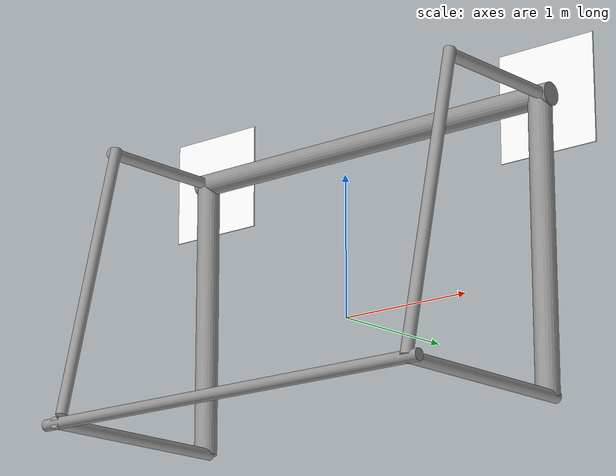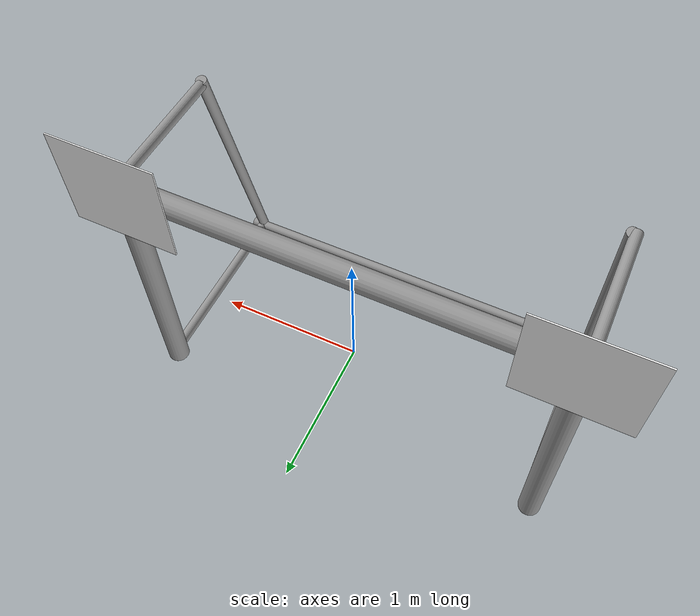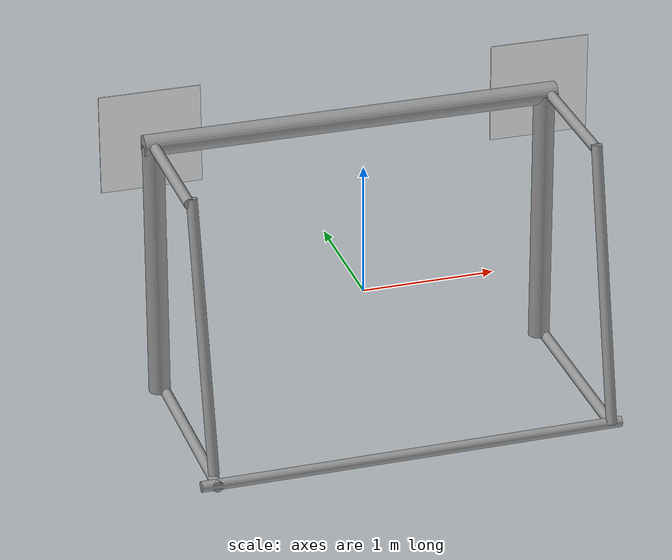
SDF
<?xml version='1.0'?>
<sdf version='1.6'>
  <model name='football_goal_with_mark'>
    <link name='link_0'>
      <pose frame=''>-1.50236 0.235986 -1.71082 -0 -0 -0</pose>
      <inertial>
        <mass>1</mass>
        <inertia>
          <ixx>0.145833</ixx>
          <ixy>0</ixy>
          <ixz>0</ixz>
          <iyy>0.145833</iyy>
          <iyz>0</iyz>
          <izz>0.125</izz>
        </inertia>
        <pose frame=''>0 0 0 0 -0 0</pose>
      </inertial>
      <self_collide>0</self_collide>
      <kinematic>0</kinematic>
      <visual name='visual'>
        <pose frame=''>0 0 2 0 -0 0</pose>
        <geometry>
          <cylinder>
            <radius>0.08</radius>
            <length>2</length>
          </cylinder>
        </geometry>
        <material>
          <lighting>1</lighting>
          <script>
            <uri>file://media/materials/scripts/gazebo.material</uri>
            <name>Gazebo/Grey</name>
          </script>
          <ambient>1 1 1 1</ambient>
          <diffuse>1 1 1 1</diffuse>
          <specular>0.01 0.01 0.01 1</specular>
          <emissive>0 0 0 1</emissive>
          <shader type='vertex'>
            <normal_map>__default__</normal_map>
          </shader>
        </material>
        <cast_shadows>1</cast_shadows>
        <transparency>0</transparency>
      </visual>
      <collision name='collision'>
        <laser_retro>0</laser_retro>
        <max_contacts>10</max_contacts>
        <pose frame=''>0 0 2 0 -0 0</pose>
        <geometry>
          <cylinder>
            <radius>0.08</radius>
            <length>2</length>
          </cylinder>
        </geometry>
        <surface>
          <friction>
            <ode>
              <mu>1</mu>
              <mu2>1</mu2>
              <fdir1>0 0 0</fdir1>
              <slip1>0</slip1>
              <slip2>0</slip2>
            </ode>
            <torsional>
              <coefficient>1</coefficient>
              <patch_radius>0</patch_radius>
              <surface_radius>0</surface_radius>
              <use_patch_radius>1</use_patch_radius>
              <ode>
                <slip>0</slip>
              </ode>
            </torsional>
          </friction>
          <bounce>
            <restitution_coefficient>0</restitution_coefficient>
            <threshold>1e+06</threshold>
          </bounce>
          <contact>
            <collide_without_contact>0</collide_without_contact>
            <collide_without_contact_bitmask>1</collide_without_contact_bitmask>
            <collide_bitmask>1</collide_bitmask>
            <ode>
              <soft_cfm>0</soft_cfm>
              <soft_erp>0.2</soft_erp>
              <kp>1e+13</kp>
              <kd>1</kd>
              <max_vel>0.01</max_vel>
              <min_depth>0</min_depth>
            </ode>
            <bullet>
              <split_impulse>1</split_impulse>
              <split_impulse_penetration_threshold>-0.01</split_impulse_penetration_threshold>
              <soft_cfm>0</soft_cfm>
              <soft_erp>0.2</soft_erp>
              <kp>1e+13</kp>
              <kd>1</kd>
            </bullet>
          </contact>
        </surface>
      </collision>
    </link>
    <link name='link_0_0'>
      <pose frame=''>1.45 0.322528 1.3 -0 -0 -0</pose>
      <inertial>
        <mass>1</mass>
        <inertia>
          <ixx>0.166667</ixx>
          <ixy>0</ixy>
          <ixz>0</ixz>
          <iyy>0.166667</iyy>
          <iyz>0</iyz>
          <izz>0.166667</izz>
        </inertia>
        <pose frame=''>0 0 0 0 -0 0</pose>
      </inertial>
      <self_collide>0</self_collide>
      <kinematic>0</kinematic>
      <gravity>1</gravity>
      <visual name='visual'>
        <pose frame=''>0 0 0 0 -0 0</pose>
        <geometry>
          <box>
            <size>0.75 0.01 0.75</size>
          </box>
        </geometry>
        <material>
          <lighting>1</lighting>
          <script>
            <uri>/home/cm/Workspaces/stereo_loc/src/stereo_loc/texture/marker.material</uri>
            <name>MarkerTexure</name>
          </script>
          <ambient>1 1 1 1</ambient>
          <diffuse>1 1 1 1</diffuse>
          <specular>0 0 0 1</specular>
          <emissive>0 0 0 1</emissive>
          <shader type='vertex'>
            <normal_map>__default__</normal_map>
          </shader>
        </material>
        <cast_shadows>1</cast_shadows>
        <transparency>0</transparency>
      </visual>
      <collision name='collision'>
        <laser_retro>0</laser_retro>
        <max_contacts>10</max_contacts>
        <pose frame=''>0 0 0 0 -0 0</pose>
        <geometry>
          <box>
            <size>0.75 0.01 0.75</size>
          </box>
        </geometry>
        <surface>
          <friction>
            <ode>
              <mu>1</mu>
              <mu2>1</mu2>
              <fdir1>0 0 0</fdir1>
              <slip1>0</slip1>
              <slip2>0</slip2>
            </ode>
            <torsional>
              <coefficient>1</coefficient>
              <patch_radius>0</patch_radius>
              <surface_radius>0</surface_radius>
              <use_patch_radius>1</use_patch_radius>
              <ode>
                <slip>0</slip>
              </ode>
            </torsional>
          </friction>
          <bounce>
            <restitution_coefficient>0</restitution_coefficient>
            <threshold>1e+06</threshold>
          </bounce>
          <contact>
            <collide_without_contact>0</collide_without_contact>
            <collide_without_contact_bitmask>1</collide_without_contact_bitmask>
            <collide_bitmask>1</collide_bitmask>
            <ode>
              <soft_cfm>0</soft_cfm>
              <soft_erp>0.2</soft_erp>
              <kp>1e+13</kp>
              <kd>1</kd>
              <max_vel>0.01</max_vel>
              <min_depth>0</min_depth>
            </ode>
            <bullet>
              <split_impulse>1</split_impulse>
              <split_impulse_penetration_threshold>-0.01</split_impulse_penetration_threshold>
              <soft_cfm>0</soft_cfm>
              <soft_erp>0.2</soft_erp>
              <kp>1e+13</kp>
              <kd>1</kd>
            </bullet>
          </contact>
        </surface>
      </collision>
    </link>
    <link name='link_0_0_clone'>
      <pose frame=''>-1.5 0.314705 1.3 -0 -0 -0</pose>
      <inertial>
        <mass>1</mass>
        <inertia>
          <ixx>0.166667</ixx>
          <ixy>0</ixy>
          <ixz>0</ixz>
          <iyy>0.166667</iyy>
          <iyz>0</iyz>
          <izz>0.166667</izz>
        </inertia>
        <pose frame=''>0 0 0 0 -0 0</pose>
      </inertial>
      <self_collide>0</self_collide>
      <kinematic>0</kinematic>
      <gravity>1</gravity>
      <visual name='visual_0'>
        <pose frame=''>0 0 0 0 -0 0</pose>
        <geometry>
          <box>
            <size>0.75 0.01 0.75</size>
          </box>
        </geometry>
        <material>
          <lighting>1</lighting>
          <script>
            <uri>/home/cm/Workspaces/stereo_loc/src/stereo_loc/texture/marker.material</uri>
            <name>MarkerTexure</name>
          </script>
          <ambient>1 1 1 1</ambient>
          <diffuse>1 1 1 1</diffuse>
          <specular>0 0 0 1</specular>
          <emissive>0 0 0 1</emissive>
          <shader type='vertex'>
            <normal_map>__default__</normal_map>
          </shader>
        </material>
        <cast_shadows>1</cast_shadows>
        <transparency>0</transparency>
      </visual>
      <collision name='collision'>
        <laser_retro>0</laser_retro>
        <max_contacts>10</max_contacts>
        <pose frame=''>0 0 0 0 -0 0</pose>
        <geometry>
          <box>
            <size>0.75 0.01 0.75</size>
          </box>
        </geometry>
        <surface>
          <friction>
            <ode>
              <mu>1</mu>
              <mu2>1</mu2>
              <fdir1>0 0 0</fdir1>
              <slip1>0</slip1>
              <slip2>0</slip2>
            </ode>
            <torsional>
              <coefficient>1</coefficient>
              <patch_radius>0</patch_radius>
              <surface_radius>0</surface_radius>
              <use_patch_radius>1</use_patch_radius>
              <ode>
                <slip>0</slip>
              </ode>
            </torsional>
          </friction>
          <bounce>
            <restitution_coefficient>0</restitution_coefficient>
            <threshold>1e+06</threshold>
          </bounce>
          <contact>
            <collide_without_contact>0</collide_without_contact>
            <collide_without_contact_bitmask>1</collide_without_contact_bitmask>
            <collide_bitmask>1</collide_bitmask>
            <ode>
              <soft_cfm>0</soft_cfm>
              <soft_erp>0.2</soft_erp>
              <kp>1e+13</kp>
              <kd>1</kd>
              <max_vel>0.01</max_vel>
              <min_depth>0</min_depth>
            </ode>
            <bullet>
              <split_impulse>1</split_impulse>
              <split_impulse_penetration_threshold>-0.01</split_impulse_penetration_threshold>
              <soft_cfm>0</soft_cfm>
              <soft_erp>0.2</soft_erp>
              <kp>1e+13</kp>
              <kd>1</kd>
            </bullet>
          </contact>
        </surface>
      </collision>
    </link>
    <link name='link_0_clone'>
      <pose frame=''>1.46069 0.228693 -1.71082 -0 -0 -0</pose>
      <inertial>
        <mass>1</mass>
        <inertia>
          <ixx>0.145833</ixx>
          <ixy>0</ixy>
          <ixz>0</ixz>
          <iyy>0.145833</iyy>
          <iyz>0</iyz>
          <izz>0.125</izz>
        </inertia>
        <pose frame=''>0 0 0 0 -0 0</pose>
      </inertial>
      <self_collide>0</self_collide>
      <kinematic>0</kinematic>
      <visual name='visual'>
        <pose frame=''>0 0 2 0 -0 0</pose>
        <geometry>
          <cylinder>
            <radius>0.08</radius>
            <length>2</length>
          </cylinder>
        </geometry>
        <material>
          <lighting>1</lighting>
          <script>
            <uri>file://media/materials/scripts/gazebo.material</uri>
            <name>Gazebo/Grey</name>
          </script>
          <ambient>1 1 1 1</ambient>
          <diffuse>1 1 1 1</diffuse>
          <specular>0.01 0.01 0.01 1</specular>
          <emissive>0 0 0 1</emissive>
          <shader type='vertex'>
            <normal_map>__default__</normal_map>
          </shader>
        </material>
        <cast_shadows>1</cast_shadows>
        <transparency>0</transparency>
      </visual>
      <collision name='collision'>
        <laser_retro>0</laser_retro>
        <max_contacts>10</max_contacts>
        <pose frame=''>0 0 2 0 -0 0</pose>
        <geometry>
          <cylinder>
            <radius>0.08</radius>
            <length>2</length>
          </cylinder>
        </geometry>
        <surface>
          <friction>
            <ode>
              <mu>1</mu>
              <mu2>1</mu2>
              <fdir1>0 0 0</fdir1>
              <slip1>0</slip1>
              <slip2>0</slip2>
            </ode>
            <torsional>
              <coefficient>1</coefficient>
              <patch_radius>0</patch_radius>
              <surface_radius>0</surface_radius>
              <use_patch_radius>1</use_patch_radius>
              <ode>
                <slip>0</slip>
              </ode>
            </torsional>
          </friction>
          <bounce>
            <restitution_coefficient>0</restitution_coefficient>
            <threshold>1e+06</threshold>
          </bounce>
          <contact>
            <collide_without_contact>0</collide_without_contact>
            <collide_without_contact_bitmask>1</collide_without_contact_bitmask>
            <collide_bitmask>1</collide_bitmask>
            <ode>
              <soft_cfm>0</soft_cfm>
              <soft_erp>0.2</soft_erp>
              <kp>1e+13</kp>
              <kd>1</kd>
              <max_vel>0.01</max_vel>
              <min_depth>0</min_depth>
            </ode>
            <bullet>
              <split_impulse>1</split_impulse>
              <split_impulse_penetration_threshold>-0.01</split_impulse_penetration_threshold>
              <soft_cfm>0</soft_cfm>
              <soft_erp>0.2</soft_erp>
              <kp>1e+13</kp>
              <kd>1</kd>
            </bullet>
          </contact>
        </surface>
      </collision>
    </link>
    <link name='link_0_clone_clone'>
      <pose frame=''>1.49764 -1.45216 -1.64111 -0.225171 -0 -0</pose>
      <inertial>
        <mass>0.94758</mass>
        <inertia>
          <ixx>0.130127</ixx>
          <ixy>0</ixy>
          <ixz>0</ixz>
          <iyy>0.130127</iyy>
          <iyz>0</iyz>
          <izz>0.118448</izz>
        </inertia>
        <pose frame=''>0 0 0 0 -0 0</pose>
      </inertial>
      <self_collide>0</self_collide>
      <kinematic>0</kinematic>
      <visual name='visual'>
        <pose frame=''>0 0 2 0 -0 0</pose>
        <geometry>
          <cylinder>
            <radius>0.04</radius>
            <length>2.08468</length>
          </cylinder>
        </geometry>
        <material>
          <lighting>1</lighting>
          <script>
            <uri>file://media/materials/scripts/gazebo.material</uri>
            <name>Gazebo/Grey</name>
          </script>
          <ambient>1 1 1 1</ambient>
          <diffuse>1 1 1 1</diffuse>
          <specular>0.01 0.01 0.01 1</specular>
          <emissive>0 0 0 1</emissive>
          <shader type='vertex'>
            <normal_map>__default__</normal_map>
          </shader>
        </material>
        <cast_shadows>1</cast_shadows>
        <transparency>0</transparency>
      </visual>
      <collision name='collision'>
        <laser_retro>0</laser_retro>
        <max_contacts>10</max_contacts>
        <pose frame=''>0 0 2 0 -0 0</pose>
        <geometry>
          <cylinder>
            <radius>0.04</radius>
            <length>2.08468</length>
          </cylinder>
        </geometry>
        <surface>
          <friction>
            <ode>
              <mu>1</mu>
              <mu2>1</mu2>
              <fdir1>0 0 0</fdir1>
              <slip1>0</slip1>
              <slip2>0</slip2>
            </ode>
            <torsional>
              <coefficient>1</coefficient>
              <patch_radius>0</patch_radius>
              <surface_radius>0</surface_radius>
              <use_patch_radius>1</use_patch_radius>
              <ode>
                <slip>0</slip>
              </ode>
            </torsional>
          </friction>
          <bounce>
            <restitution_coefficient>0</restitution_coefficient>
            <threshold>1e+06</threshold>
          </bounce>
          <contact>
            <collide_without_contact>0</collide_without_contact>
            <collide_without_contact_bitmask>1</collide_without_contact_bitmask>
            <collide_bitmask>1</collide_bitmask>
            <ode>
              <soft_cfm>0</soft_cfm>
              <soft_erp>0.2</soft_erp>
              <kp>1e+13</kp>
              <kd>1</kd>
              <max_vel>0.01</max_vel>
              <min_depth>0</min_depth>
            </ode>
            <bullet>
              <split_impulse>1</split_impulse>
              <split_impulse_penetration_threshold>-0.01</split_impulse_penetration_threshold>
              <soft_cfm>0</soft_cfm>
              <soft_erp>0.2</soft_erp>
              <kp>1e+13</kp>
              <kd>1</kd>
            </bullet>
          </contact>
        </surface>
      </collision>
    </link>
    <link name='link_0_clone_clone_clone'>
      <pose frame=''>-1.47855 -1.40446 -1.61642 -0.225171 -0 -0</pose>
      <inertial>
        <mass>0.915875</mass>
        <inertia>
          <ixx>0.121264</ixx>
          <ixy>0</ixy>
          <ixz>0</ixz>
          <iyy>0.121264</iyy>
          <iyz>0</iyz>
          <izz>0.114484</izz>
        </inertia>
        <pose frame=''>0 0 0 0 -0 0</pose>
      </inertial>
      <self_collide>0</self_collide>
      <kinematic>0</kinematic>
      <visual name='visual'>
        <pose frame=''>0 0 2 0 -0 0</pose>
        <geometry>
          <cylinder>
            <radius>0.04</radius>
            <length>2.01493</length>
          </cylinder>
        </geometry>
        <material>
          <lighting>1</lighting>
          <script>
            <uri>file://media/materials/scripts/gazebo.material</uri>
            <name>Gazebo/Grey</name>
          </script>
          <ambient>1 1 1 1</ambient>
          <diffuse>1 1 1 1</diffuse>
          <specular>0.01 0.01 0.01 1</specular>
          <emissive>0 0 0 1</emissive>
          <shader type='vertex'>
            <normal_map>__default__</normal_map>
          </shader>
        </material>
        <cast_shadows>1</cast_shadows>
        <transparency>0</transparency>
      </visual>
      <collision name='collision'>
        <laser_retro>0</laser_retro>
        <max_contacts>10</max_contacts>
        <pose frame=''>0 0 2 0 -0 0</pose>
        <geometry>
          <cylinder>
            <radius>0.04</radius>
            <length>2.01493</length>
          </cylinder>
        </geometry>
        <surface>
          <friction>
            <ode>
              <mu>1</mu>
              <mu2>1</mu2>
              <fdir1>0 0 0</fdir1>
              <slip1>0</slip1>
              <slip2>0</slip2>
            </ode>
            <torsional>
              <coefficient>1</coefficient>
              <patch_radius>0</patch_radius>
              <surface_radius>0</surface_radius>
              <use_patch_radius>1</use_patch_radius>
              <ode>
                <slip>0</slip>
              </ode>
            </torsional>
          </friction>
          <bounce>
            <restitution_coefficient>0</restitution_coefficient>
            <threshold>1e+06</threshold>
          </bounce>
          <contact>
            <collide_without_contact>0</collide_without_contact>
            <collide_without_contact_bitmask>1</collide_without_contact_bitmask>
            <collide_bitmask>1</collide_bitmask>
            <ode>
              <soft_cfm>0</soft_cfm>
              <soft_erp>0.2</soft_erp>
              <kp>1e+13</kp>
              <kd>1</kd>
              <max_vel>0.01</max_vel>
              <min_depth>0</min_depth>
            </ode>
            <bullet>
              <split_impulse>1</split_impulse>
              <split_impulse_penetration_threshold>-0.01</split_impulse_penetration_threshold>
              <soft_cfm>0</soft_cfm>
              <soft_erp>0.2</soft_erp>
              <kp>1e+13</kp>
              <kd>1</kd>
            </bullet>
          </contact>
        </surface>
      </collision>
    </link>
    <link name='link_1'>
      <pose frame=''>-0.014228 0.235986 1.28918 0.004059 1.57079 0.004059</pose>
      <inertial>
        <mass>1</mass>
        <inertia>
          <ixx>0.145833</ixx>
          <ixy>0</ixy>
          <ixz>0</ixz>
          <iyy>0.145833</iyy>
          <iyz>0</iyz>
          <izz>0.125</izz>
        </inertia>
        <pose frame=''>0 0 0 0 -0 0</pose>
      </inertial>
      <self_collide>0</self_collide>
      <kinematic>0</kinematic>
      <gravity>1</gravity>
      <visual name='visual'>
        <pose frame=''>0 0 0 0 -0 0</pose>
        <geometry>
          <cylinder>
            <radius>0.08</radius>
            <length>3.12</length>
          </cylinder>
        </geometry>
        <material>
          <lighting>1</lighting>
          <script>
            <uri>file://media/materials/scripts/gazebo.material</uri>
            <name>Gazebo/Grey</name>
          </script>
          <ambient>1 1 1 1</ambient>
          <diffuse>1 1 1 1</diffuse>
          <specular>0.01 0.01 0.01 1</specular>
          <emissive>0 0 0 1</emissive>
          <shader type='vertex'>
            <normal_map>__default__</normal_map>
          </shader>
        </material>
        <cast_shadows>1</cast_shadows>
        <transparency>0</transparency>
      </visual>
      <collision name='collision'>
        <laser_retro>0</laser_retro>
        <max_contacts>10</max_contacts>
        <pose frame=''>0 0 0 0 -0 0</pose>
        <geometry>
          <cylinder>
            <radius>0.08</radius>
            <length>3.12</length>
          </cylinder>
        </geometry>
        <surface>
          <friction>
            <ode>
              <mu>1</mu>
              <mu2>1</mu2>
              <fdir1>0 0 0</fdir1>
              <slip1>0</slip1>
              <slip2>0</slip2>
            </ode>
            <torsional>
              <coefficient>1</coefficient>
              <patch_radius>0</patch_radius>
              <surface_radius>0</surface_radius>
              <use_patch_radius>1</use_patch_radius>
              <ode>
                <slip>0</slip>
              </ode>
            </torsional>
          </friction>
          <bounce>
            <restitution_coefficient>0</restitution_coefficient>
            <threshold>1e+06</threshold>
          </bounce>
          <contact>
            <collide_without_contact>0</collide_without_contact>
            <collide_without_contact_bitmask>1</collide_without_contact_bitmask>
            <collide_bitmask>1</collide_bitmask>
            <ode>
              <soft_cfm>0</soft_cfm>
              <soft_erp>0.2</soft_erp>
              <kp>1e+13</kp>
              <kd>1</kd>
              <max_vel>0.01</max_vel>
              <min_depth>0</min_depth>
            </ode>
            <bullet>
              <split_impulse>1</split_impulse>
              <split_impulse_penetration_threshold>-0.01</split_impulse_penetration_threshold>
              <soft_cfm>0</soft_cfm>
              <soft_erp>0.2</soft_erp>
              <kp>1e+13</kp>
              <kd>1</kd>
            </bullet>
          </contact>
        </surface>
      </collision>
    </link>
    <link name='link_1_clone'>
      <pose frame=''>-1.46642 -0.505604 -0.710818 1.59835 1.57079 0.027557</pose>
      <inertial>
        <mass>1</mass>
        <inertia>
          <ixx>0.145833</ixx>
          <ixy>0</ixy>
          <ixz>0</ixz>
          <iyy>0.145833</iyy>
          <iyz>0</iyz>
          <izz>0.125</izz>
        </inertia>
        <pose frame=''>0 0 0 0 -0 0</pose>
      </inertial>
      <self_collide>0</self_collide>
      <kinematic>0</kinematic>
      <visual name='visual'>
        <pose frame=''>0 0 0 0 -0 0</pose>
        <geometry>
          <cylinder>
            <radius>0.04</radius>
            <length>1.5</length>
          </cylinder>
        </geometry>
        <material>
          <lighting>1</lighting>
          <script>
            <uri>file://media/materials/scripts/gazebo.material</uri>
            <name>Gazebo/Grey</name>
          </script>
          <ambient>1 1 1 1</ambient>
          <diffuse>1 1 1 1</diffuse>
          <specular>0.01 0.01 0.01 1</specular>
          <emissive>0 0 0 1</emissive>
          <shader type='vertex'>
            <normal_map>__default__</normal_map>
          </shader>
        </material>
        <cast_shadows>1</cast_shadows>
        <transparency>0</transparency>
      </visual>
      <collision name='collision'>
        <laser_retro>0</laser_retro>
        <max_contacts>10</max_contacts>
        <pose frame=''>0 0 0 0 -0 0</pose>
        <geometry>
          <cylinder>
            <radius>0.04</radius>
            <length>1.5</length>
          </cylinder>
        </geometry>
        <surface>
          <friction>
            <ode>
              <mu>1</mu>
              <mu2>1</mu2>
              <fdir1>0 0 0</fdir1>
              <slip1>0</slip1>
              <slip2>0</slip2>
            </ode>
            <torsional>
              <coefficient>1</coefficient>
              <patch_radius>0</patch_radius>
              <surface_radius>0</surface_radius>
              <use_patch_radius>1</use_patch_radius>
              <ode>
                <slip>0</slip>
              </ode>
            </torsional>
          </friction>
          <bounce>
            <restitution_coefficient>0</restitution_coefficient>
            <threshold>1e+06</threshold>
          </bounce>
          <contact>
            <collide_without_contact>0</collide_without_contact>
            <collide_without_contact_bitmask>1</collide_without_contact_bitmask>
            <collide_bitmask>1</collide_bitmask>
            <ode>
              <soft_cfm>0</soft_cfm>
              <soft_erp>0.2</soft_erp>
              <kp>1e+13</kp>
              <kd>1</kd>
              <max_vel>0.01</max_vel>
              <min_depth>0</min_depth>
            </ode>
            <bullet>
              <split_impulse>1</split_impulse>
              <split_impulse_penetration_threshold>-0.01</split_impulse_penetration_threshold>
              <soft_cfm>0</soft_cfm>
              <soft_erp>0.2</soft_erp>
              <kp>1e+13</kp>
              <kd>1</kd>
            </bullet>
          </contact>
        </surface>
      </collision>
    </link>
    <link name='link_1_clone_0'>
      <pose frame=''>-0.001601 -1.21893 -0.71082 0.000801 1.57079 0.000801</pose>
      <inertial>
        <mass>1</mass>
        <inertia>
          <ixx>0.145833</ixx>
          <ixy>0</ixy>
          <ixz>0</ixz>
          <iyy>0.145833</iyy>
          <iyz>0</iyz>
          <izz>0.125</izz>
        </inertia>
        <pose frame=''>0 0 0 0 -0 0</pose>
      </inertial>
      <self_collide>0</self_collide>
      <kinematic>0</kinematic>
      <visual name='visual'>
        <pose frame=''>0 0 0 0 -0 0</pose>
        <geometry>
          <cylinder>
            <radius>0.04</radius>
            <length>3.16</length>
          </cylinder>
        </geometry>
        <material>
          <lighting>1</lighting>
          <script>
            <uri>file://media/materials/scripts/gazebo.material</uri>
            <name>Gazebo/Grey</name>
          </script>
          <ambient>1 1 1 1</ambient>
          <diffuse>1 1 1 1</diffuse>
          <specular>0.01 0.01 0.01 1</specular>
          <emissive>0 0 0 1</emissive>
          <shader type='vertex'>
            <normal_map>__default__</normal_map>
          </shader>
        </material>
        <cast_shadows>1</cast_shadows>
        <transparency>0</transparency>
      </visual>
      <collision name='collision'>
        <laser_retro>0</laser_retro>
        <max_contacts>10</max_contacts>
        <pose frame=''>0 0 0 0 -0 0</pose>
        <geometry>
          <cylinder>
            <radius>0.04</radius>
            <length>3.16</length>
          </cylinder>
        </geometry>
        <surface>
          <friction>
            <ode>
              <mu>1</mu>
              <mu2>1</mu2>
              <fdir1>0 0 0</fdir1>
              <slip1>0</slip1>
              <slip2>0</slip2>
            </ode>
            <torsional>
              <coefficient>1</coefficient>
              <patch_radius>0</patch_radius>
              <surface_radius>0</surface_radius>
              <use_patch_radius>1</use_patch_radius>
              <ode>
                <slip>0</slip>
              </ode>
            </torsional>
          </friction>
          <bounce>
            <restitution_coefficient>0</restitution_coefficient>
            <threshold>1e+06</threshold>
          </bounce>
          <contact>
            <collide_without_contact>0</collide_without_contact>
            <collide_without_contact_bitmask>1</collide_without_contact_bitmask>
            <collide_bitmask>1</collide_bitmask>
            <ode>
              <soft_cfm>0</soft_cfm>
              <soft_erp>0.2</soft_erp>
              <kp>1e+13</kp>
              <kd>1</kd>
              <max_vel>0.01</max_vel>
              <min_depth>0</min_depth>
            </ode>
            <bullet>
              <split_impulse>1</split_impulse>
              <split_impulse_penetration_threshold>-0.01</split_impulse_penetration_threshold>
              <soft_cfm>0</soft_cfm>
              <soft_erp>0.2</soft_erp>
              <kp>1e+13</kp>
              <kd>1</kd>
            </bullet>
          </contact>
        </surface>
      </collision>
    </link>
    <link name='link_1_clone_clone'>
      <pose frame=''>1.49763 -0.479431 -0.710818 1.57006 1.57079 -0.000733</pose>
      <inertial>
        <mass>1</mass>
        <inertia>
          <ixx>0.145833</ixx>
          <ixy>0</ixy>
          <ixz>0</ixz>
          <iyy>0.145833</iyy>
          <iyz>0</iyz>
          <izz>0.125</izz>
        </inertia>
        <pose frame=''>0 0 0 0 -0 0</pose>
      </inertial>
      <self_collide>0</self_collide>
      <kinematic>0</kinematic>
      <visual name='visual'>
        <pose frame=''>0 0 0 0 -0 0</pose>
        <geometry>
          <cylinder>
            <radius>0.04</radius>
            <length>1.5</length>
          </cylinder>
        </geometry>
        <material>
          <lighting>1</lighting>
          <script>
            <uri>file://media/materials/scripts/gazebo.material</uri>
            <name>Gazebo/Grey</name>
          </script>
          <ambient>1 1 1 1</ambient>
          <diffuse>1 1 1 1</diffuse>
          <specular>0.01 0.01 0.01 1</specular>
          <emissive>0 0 0 1</emissive>
          <shader type='vertex'>
            <normal_map>__default__</normal_map>
          </shader>
        </material>
        <cast_shadows>1</cast_shadows>
        <transparency>0</transparency>
      </visual>
      <collision name='collision'>
        <laser_retro>0</laser_retro>
        <max_contacts>10</max_contacts>
        <pose frame=''>0 0 0 0 -0 0</pose>
        <geometry>
          <cylinder>
            <radius>0.04</radius>
            <length>1.5</length>
          </cylinder>
        </geometry>
        <surface>
          <friction>
            <ode>
              <mu>1</mu>
              <mu2>1</mu2>
              <fdir1>0 0 0</fdir1>
              <slip1>0</slip1>
              <slip2>0</slip2>
            </ode>
            <torsional>
              <coefficient>1</coefficient>
              <patch_radius>0</patch_radius>
              <surface_radius>0</surface_radius>
              <use_patch_radius>1</use_patch_radius>
              <ode>
                <slip>0</slip>
              </ode>
            </torsional>
          </friction>
          <bounce>
            <restitution_coefficient>0</restitution_coefficient>
            <threshold>1e+06</threshold>
          </bounce>
          <contact>
            <collide_without_contact>0</collide_without_contact>
            <collide_without_contact_bitmask>1</collide_without_contact_bitmask>
            <collide_bitmask>1</collide_bitmask>
            <ode>
              <soft_cfm>0</soft_cfm>
              <soft_erp>0.2</soft_erp>
              <kp>1e+13</kp>
              <kd>1</kd>
              <max_vel>0.01</max_vel>
              <min_depth>0</min_depth>
            </ode>
            <bullet>
              <split_impulse>1</split_impulse>
              <split_impulse_penetration_threshold>-0.01</split_impulse_penetration_threshold>
              <soft_cfm>0</soft_cfm>
              <soft_erp>0.2</soft_erp>
              <kp>1e+13</kp>
              <kd>1</kd>
            </bullet>
          </contact>
        </surface>
      </collision>
    </link>
    <link name='link_1_clone_clone_clone'>
      <pose frame=''>-1.50236 -0.264014 1.28918 1.56536 1.57079 -0.005426</pose>
      <inertial>
        <mass>1</mass>
        <inertia>
          <ixx>0.145833</ixx>
          <ixy>0</ixy>
          <ixz>0</ixz>
          <iyy>0.145833</iyy>
          <iyz>0</iyz>
          <izz>0.125</izz>
        </inertia>
        <pose frame=''>0 0 0 0 -0 0</pose>
      </inertial>
      <self_collide>0</self_collide>
      <kinematic>0</kinematic>
      <visual name='visual'>
        <pose frame=''>0 0 0 0 -0 0</pose>
        <geometry>
          <cylinder>
            <radius>0.04</radius>
            <length>1</length>
          </cylinder>
        </geometry>
        <material>
          <lighting>1</lighting>
          <script>
            <uri>file://media/materials/scripts/gazebo.material</uri>
            <name>Gazebo/Grey</name>
          </script>
          <ambient>1 1 1 1</ambient>
          <diffuse>1 1 1 1</diffuse>
          <specular>0.01 0.01 0.01 1</specular>
          <emissive>0 0 0 1</emissive>
          <shader type='vertex'>
            <normal_map>__default__</normal_map>
          </shader>
        </material>
        <cast_shadows>1</cast_shadows>
        <transparency>0</transparency>
      </visual>
      <collision name='collision'>
        <laser_retro>0</laser_retro>
        <max_contacts>10</max_contacts>
        <pose frame=''>0 0 0 0 -0 0</pose>
        <geometry>
          <cylinder>
            <radius>0.04</radius>
            <length>1</length>
          </cylinder>
        </geometry>
        <surface>
          <friction>
            <ode>
              <mu>1</mu>
              <mu2>1</mu2>
              <fdir1>0 0 0</fdir1>
              <slip1>0</slip1>
              <slip2>0</slip2>
            </ode>
            <torsional>
              <coefficient>1</coefficient>
              <patch_radius>0</patch_radius>
              <surface_radius>0</surface_radius>
              <use_patch_radius>1</use_patch_radius>
              <ode>
                <slip>0</slip>
              </ode>
            </torsional>
          </friction>
          <bounce>
            <restitution_coefficient>0</restitution_coefficient>
            <threshold>1e+06</threshold>
          </bounce>
          <contact>
            <collide_without_contact>0</collide_without_contact>
            <collide_without_contact_bitmask>1</collide_without_contact_bitmask>
            <collide_bitmask>1</collide_bitmask>
            <ode>
              <soft_cfm>0</soft_cfm>
              <soft_erp>0.2</soft_erp>
              <kp>1e+13</kp>
              <kd>1</kd>
              <max_vel>0.01</max_vel>
              <min_depth>0</min_depth>
            </ode>
            <bullet>
              <split_impulse>1</split_impulse>
              <split_impulse_penetration_threshold>-0.01</split_impulse_penetration_threshold>
              <soft_cfm>0</soft_cfm>
              <soft_erp>0.2</soft_erp>
              <kp>1e+13</kp>
              <kd>1</kd>
            </bullet>
          </contact>
        </surface>
      </collision>
    </link>
    <link name='link_1_clone_clone_clone_0'>
      <pose frame=''>1.49764 -0.264014 1.28918 1.57006 1.57079 -0.000732</pose>
      <inertial>
        <mass>1</mass>
        <inertia>
          <ixx>0.145833</ixx>
          <ixy>0</ixy>
          <ixz>0</ixz>
          <iyy>0.145833</iyy>
          <iyz>0</iyz>
          <izz>0.125</izz>
        </inertia>
        <pose frame=''>0 0 0 0 -0 0</pose>
      </inertial>
      <self_collide>0</self_collide>
      <kinematic>0</kinematic>
      <visual name='visual'>
        <pose frame=''>0 0 0 0 -0 0</pose>
        <geometry>
          <cylinder>
            <radius>0.04</radius>
            <length>1</length>
          </cylinder>
        </geometry>
        <material>
          <lighting>1</lighting>
          <script>
            <uri>file://media/materials/scripts/gazebo.material</uri>
            <name>Gazebo/Grey</name>
          </script>
          <ambient>1 1 1 1</ambient>
          <diffuse>1 1 1 1</diffuse>
          <specular>0.01 0.01 0.01 1</specular>
          <emissive>0 0 0 1</emissive>
          <shader type='vertex'>
            <normal_map>__default__</normal_map>
          </shader>
        </material>
        <cast_shadows>1</cast_shadows>
        <transparency>0</transparency>
      </visual>
      <collision name='collision'>
        <laser_retro>0</laser_retro>
        <max_contacts>10</max_contacts>
        <pose frame=''>0 0 0 0 -0 0</pose>
        <geometry>
          <cylinder>
            <radius>0.04</radius>
            <length>1</length>
          </cylinder>
        </geometry>
        <surface>
          <friction>
            <ode>
              <mu>1</mu>
              <mu2>1</mu2>
              <fdir1>0 0 0</fdir1>
              <slip1>0</slip1>
              <slip2>0</slip2>
            </ode>
            <torsional>
              <coefficient>1</coefficient>
              <patch_radius>0</patch_radius>
              <surface_radius>0</surface_radius>
              <use_patch_radius>1</use_patch_radius>
              <ode>
                <slip>0</slip>
              </ode>
            </torsional>
          </friction>
          <bounce>
            <restitution_coefficient>0</restitution_coefficient>
            <threshold>1e+06</threshold>
          </bounce>
          <contact>
            <collide_without_contact>0</collide_without_contact>
            <collide_without_contact_bitmask>1</collide_without_contact_bitmask>
            <collide_bitmask>1</collide_bitmask>
            <ode>
              <soft_cfm>0</soft_cfm>
              <soft_erp>0.2</soft_erp>
              <kp>1e+13</kp>
              <kd>1</kd>
              <max_vel>0.01</max_vel>
              <min_depth>0</min_depth>
            </ode>
            <bullet>
              <split_impulse>1</split_impulse>
              <split_impulse_penetration_threshold>-0.01</split_impulse_penetration_threshold>
              <soft_cfm>0</soft_cfm>
              <soft_erp>0.2</soft_erp>
              <kp>1e+13</kp>
              <kd>1</kd>
            </bullet>
          </contact>
        </surface>
      </collision>
    </link>
    <joint name='link_0_0_JOINT_1' type='fixed'>
      <parent>link_0_0</parent>
      <child>link_0_clone</child>
      <pose frame=''>0 0 0 0 -0 0</pose>
      <physics>
        <ode>
          <limit>
            <cfm>0</cfm>
            <erp>0.2</erp>
          </limit>
          <suspension>
            <cfm>0</cfm>
            <erp>0.2</erp>
          </suspension>
        </ode>
      </physics>
    </joint>
    <joint name='link_0_0_clone_JOINT_1' type='revolute'>
      <parent>link_0_0_clone</parent>
      <child>link_0</child>
      <pose frame=''>0 0 0 0 -0 0</pose>
      <axis>
        <xyz>1 0 0</xyz>
        <use_parent_model_frame>0</use_parent_model_frame>
        <limit>
          <lower>-1.79769e+308</lower>
          <upper>1.79769e+308</upper>
          <effort>-1</effort>
          <velocity>-1</velocity>
        </limit>
        <dynamics>
          <spring_reference>0</spring_reference>
          <spring_stiffness>0</spring_stiffness>
          <damping>0</damping>
          <friction>0</friction>
        </dynamics>
      </axis>
      <physics>
        <ode>
          <limit>
            <cfm>0</cfm>
            <erp>0.2</erp>
          </limit>
          <suspension>
            <cfm>0</cfm>
            <erp>0.2</erp>
          </suspension>
        </ode>
      </physics>
    </joint>
    <joint name='link_0_clone_JOINT_4' type='fixed'>
      <parent>link_0_clone</parent>
      <child>link_1_clone_clone</child>
      <pose frame=''>0 0 0 0 -0 0</pose>
      <physics>
        <ode>
          <limit>
            <cfm>0</cfm>
            <erp>0.2</erp>
          </limit>
          <suspension>
            <cfm>0</cfm>
            <erp>0.2</erp>
          </suspension>
        </ode>
      </physics>
    </joint>
    <joint name='link_0_clone_clone_JOINT_11' type='fixed'>
      <parent>link_0_clone_clone</parent>
      <child>link_1_clone_0</child>
      <pose frame=''>0 0 0 0 -0 0</pose>
      <physics>
        <ode>
          <limit>
            <cfm>0</cfm>
            <erp>0.2</erp>
          </limit>
          <suspension>
            <cfm>0</cfm>
            <erp>0.2</erp>
          </suspension>
        </ode>
      </physics>
    </joint>
    <joint name='link_0_clone_clone_JOINT_12' type='fixed'>
      <parent>link_0_clone_clone</parent>
      <child>link_1_clone_clone</child>
      <pose frame=''>0 0 0 0 -0 0</pose>
      <physics>
        <ode>
          <limit>
            <cfm>0</cfm>
            <erp>0.2</erp>
          </limit>
          <suspension>
            <cfm>0</cfm>
            <erp>0.2</erp>
          </suspension>
        </ode>
      </physics>
    </joint>
    <joint name='link_0_clone_clone_clone_JOINT_8' type='fixed'>
      <parent>link_0_clone_clone_clone</parent>
      <child>link_1_clone</child>
      <pose frame=''>0 0 0 0 -0 0</pose>
      <physics>
        <ode>
          <limit>
            <cfm>0</cfm>
            <erp>0.2</erp>
          </limit>
          <suspension>
            <cfm>0</cfm>
            <erp>0.2</erp>
          </suspension>
        </ode>
      </physics>
    </joint>
    <joint name='link_0_clone_clone_clone_JOINT_9' type='fixed'>
      <parent>link_0_clone_clone_clone</parent>
      <child>link_1_clone_0</child>
      <pose frame=''>0 0 0 0 -0 0</pose>
      <physics>
        <ode>
          <limit>
            <cfm>0</cfm>
            <erp>0.2</erp>
          </limit>
          <suspension>
            <cfm>0</cfm>
            <erp>0.2</erp>
          </suspension>
        </ode>
      </physics>
    </joint>
    <joint name='link_1_JOINT_0_0' type='fixed'>
      <parent>link_1</parent>
      <child>link_0_0_clone</child>
      <pose frame=''>0 0 0 0 -0 0</pose>
      <physics>
        <ode>
          <limit>
            <cfm>0</cfm>
            <erp>0.2</erp>
          </limit>
          <suspension>
            <cfm>0</cfm>
            <erp>0.2</erp>
          </suspension>
        </ode>
      </physics>
    </joint>
    <joint name='link_1_JOINT_0' type='fixed'>
      <parent>link_1</parent>
      <child>link_0_0</child>
      <pose frame=''>0 0 0 0 -0 0</pose>
      <physics>
        <ode>
          <limit>
            <cfm>0</cfm>
            <erp>0.2</erp>
          </limit>
          <suspension>
            <cfm>0</cfm>
            <erp>0.2</erp>
          </suspension>
        </ode>
      </physics>
    </joint>
    <joint name='link_1_JOINT_1' type='fixed'>
      <parent>link_1</parent>
      <child>link_1_clone_clone_clone_0</child>
      <pose frame=''>0 0 0 0 -0 0</pose>
      <physics>
        <ode>
          <limit>
            <cfm>0</cfm>
            <erp>0.2</erp>
          </limit>
          <suspension>
            <cfm>0</cfm>
            <erp>0.2</erp>
          </suspension>
        </ode>
      </physics>
    </joint>
    <joint name='link_1_clone_JOINT_5' type='fixed'>
      <parent>link_1_clone</parent>
      <child>link_1_clone_0</child>
      <pose frame=''>0 0 0 0 -0 0</pose>
      <physics>
        <ode>
          <limit>
            <cfm>0</cfm>
            <erp>0.2</erp>
          </limit>
          <suspension>
            <cfm>0</cfm>
            <erp>0.2</erp>
          </suspension>
        </ode>
      </physics>
    </joint>
    <joint name='link_1_clone_clone_JOINT_6' type='fixed'>
      <parent>link_1_clone_clone</parent>
      <child>link_1_clone_0</child>
      <pose frame=''>0 0 0 0 -0 0</pose>
      <physics>
        <ode>
          <limit>
            <cfm>0</cfm>
            <erp>0.2</erp>
          </limit>
          <suspension>
            <cfm>0</cfm>
            <erp>0.2</erp>
          </suspension>
        </ode>
      </physics>
    </joint>
    <joint name='link_1_clone_clone_clone_0_JOINT_10' type='fixed'>
      <parent>link_1_clone_clone_clone_0</parent>
      <child>link_0_clone_clone</child>
      <pose frame=''>0 0 0 0 -0 0</pose>
      <physics>
        <ode>
          <limit>
            <cfm>0</cfm>
            <erp>0.2</erp>
          </limit>
          <suspension>
            <cfm>0</cfm>
            <erp>0.2</erp>
          </suspension>
        </ode>
      </physics>
    </joint>
    <joint name='link_1_clone_clone_clone_0_JOINT_3' type='fixed'>
      <parent>link_1_clone_clone_clone_0</parent>
      <child>link_0_clone</child>
      <pose frame=''>0 0 0 0 -0 0</pose>
      <physics>
        <ode>
          <limit>
            <cfm>0</cfm>
            <erp>0.2</erp>
          </limit>
          <suspension>
            <cfm>0</cfm>
            <erp>0.2</erp>
          </suspension>
        </ode>
      </physics>
    </joint>
    <joint name='link_1_clone_clone_clone_JOINT_0_0' type='fixed'>
      <parent>link_1_clone_clone_clone</parent>
      <child>link_0</child>
      <pose frame=''>0 0 0 0 -0 0</pose>
      <physics>
        <ode>
          <limit>
            <cfm>0</cfm>
            <erp>0.2</erp>
          </limit>
          <suspension>
            <cfm>0</cfm>
            <erp>0.2</erp>
          </suspension>
        </ode>
      </physics>
    </joint>
    <joint name='link_1_clone_clone_clone_JOINT_0' type='fixed'>
      <parent>link_1_clone_clone_clone</parent>
      <child>link_1</child>
      <pose frame=''>0 0 0 0 -0 0</pose>
      <physics>
        <ode>
          <limit>
            <cfm>0</cfm>
            <erp>0.2</erp>
          </limit>
          <suspension>
            <cfm>0</cfm>
            <erp>0.2</erp>
          </suspension>
        </ode>
      </physics>
    </joint>
    <joint name='link_1_clone_clone_clone_JOINT_7' type='fixed'>
      <parent>link_1_clone_clone_clone</parent>
      <child>link_0_clone_clone_clone</child>
      <pose frame=''>0 0 0 0 -0 0</pose>
      <physics>
        <ode>
          <limit>
            <cfm>0</cfm>
            <erp>0.2</erp>
          </limit>
          <suspension>
            <cfm>0</cfm>
            <erp>0.2</erp>
          </suspension>
        </ode>
      </physics>
    </joint>
    <static>0</static>
    <allow_auto_disable>1</allow_auto_disable>
  </model>
</sdf>
